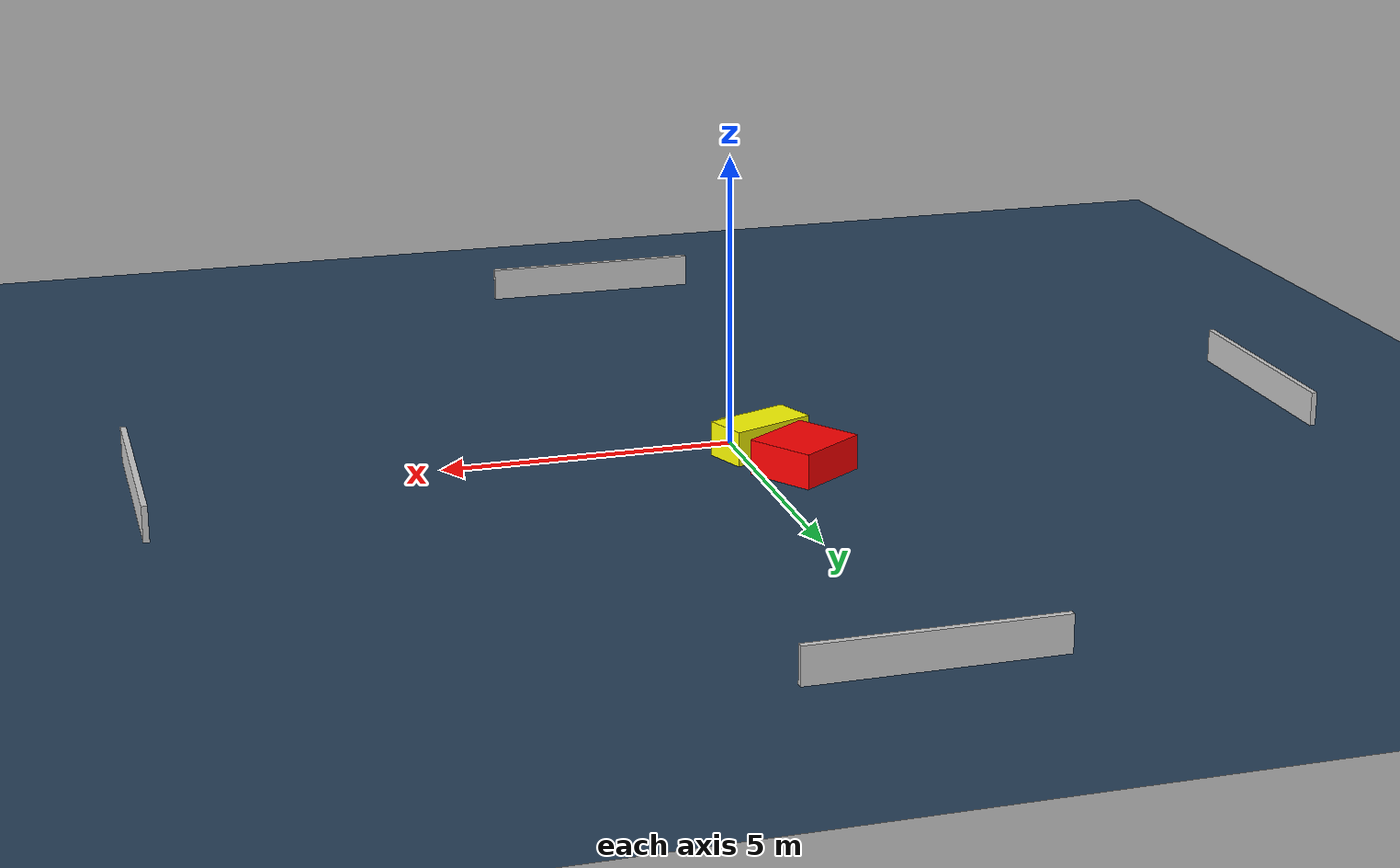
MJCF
<?xml version="1.0" ?>
<mujoco model="generated_environment">
  <option timestep="0.01" integrator="RK4" cone="elliptic"/>
  <default>
    <geom density="1"/>
  </default>
  <asset>
    <texture builtin="gradient" height="3072" name="skybox" rgb1="0.3 0.5 0.7" rgb2="0 0 0" type="skybox" width="512"/>
    <texture builtin="checker" height="300" name="groundplane" rgb1="0.2 0.3 0.4" rgb2="0.1 0.2 0.3" type="2d" width="300"/>
    <material name="groundplane" reflectance="0.2" texrepeat="5 5" texture="groundplane"/>
  </asset>
  <worldbody>
    <light dir="0 0 -1" directional="true" pos="0 0 1.5"/>
    <geom condim="3" friction="0.5 0.005 0.001" material="groundplane" name="floor" pos="0 0 0" size="0 0 0.05" type="plane"/>
    <body name="walls">
      <geom name="wall_1" condim="4" pos="-10.0 0.0 0.3" rgba="0.800000011920929 0.800000011920929 0.800000011920929 1.0" size="0.05 2.0 0.3" type="box"/>
      <geom name="wall_2" condim="4" pos="10.0 0.0 0.3" rgba="0.800000011920929 0.800000011920929 0.800000011920929 1.0" size="0.05 2.0 0.3" type="box"/>
      <geom name="wall_3" condim="4" pos="0.0 -10.0 0.3" rgba="0.800000011920929 0.800000011920929 0.800000011920929 1.0" size="2.0 0.05 0.3" type="box"/>
      <geom name="wall_4" condim="4" pos="0.0 10.0 0.3" rgba="0.800000011920929 0.800000011920929 0.800000011920929 1.0" size="2.0 0.05 0.3" type="box"/>
    </body>
    <body name="robot">
      <joint name="joint_x" type="slide" pos="0 0 0" axis="1 0 0"/>
      <joint name="joint_y" type="slide" pos="0 0 0" axis="0 1 0"/>
      <geom name="robot" type="cylinder" pos="0.0 0.0 0.2" size="0.2 0.2 0.0" mass="5.0" friction="1.0 0.005 0.0001" condim="4" rgba="1.0 1.0 0.0 1.0"/>
    </body>
    <body name="obstacle_1_movable">
      <geom name="obstacle_1_movable" condim="4" pos="-0.35129914597660195 0.6121724875278629 0.3" euler="0 0 291.3131504067681" friction="0.0 0.005 0.001" rgba="1.0 1.0 0.0 1.0" size="0.37543388304086234 0.753633848039027 0.3" type="box" mass="0.1"/>
      <joint type="free"/>
    </body>
    <body name="obstacle_2_static">
      <geom name="obstacle_2_static" condim="4" pos="-0.7528749129454912 1.7620871818399693 0.3" euler="0 0 34.23025597731338" friction="0.0 0.005 0.001" rgba="1.0 0.0 0.0 1.0" size="0.665351284053866 0.6026530839333479 0.3" type="box"/>
    </body>
  </worldbody>
  <actuator>
    <motor name="actuator_x" joint="joint_x" gear="1" ctrlrange="-1 1"/>
    <motor name="actuator_y" joint="joint_y" gear="1" ctrlrange="-1 1"/>
  </actuator>
</mujoco>
